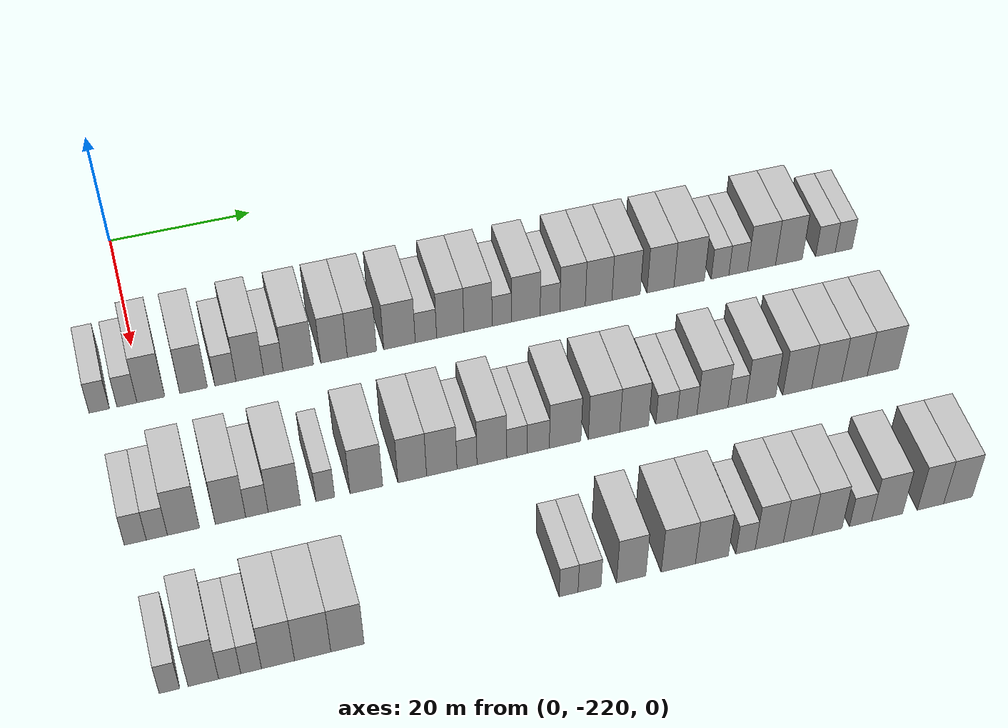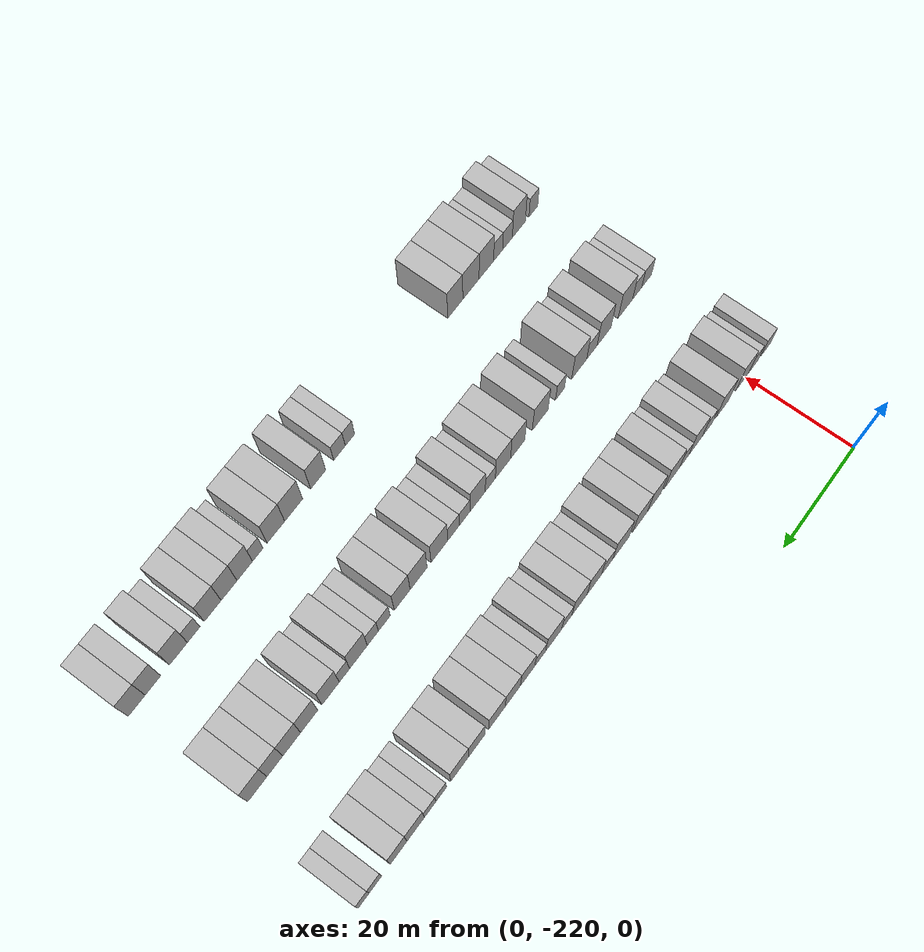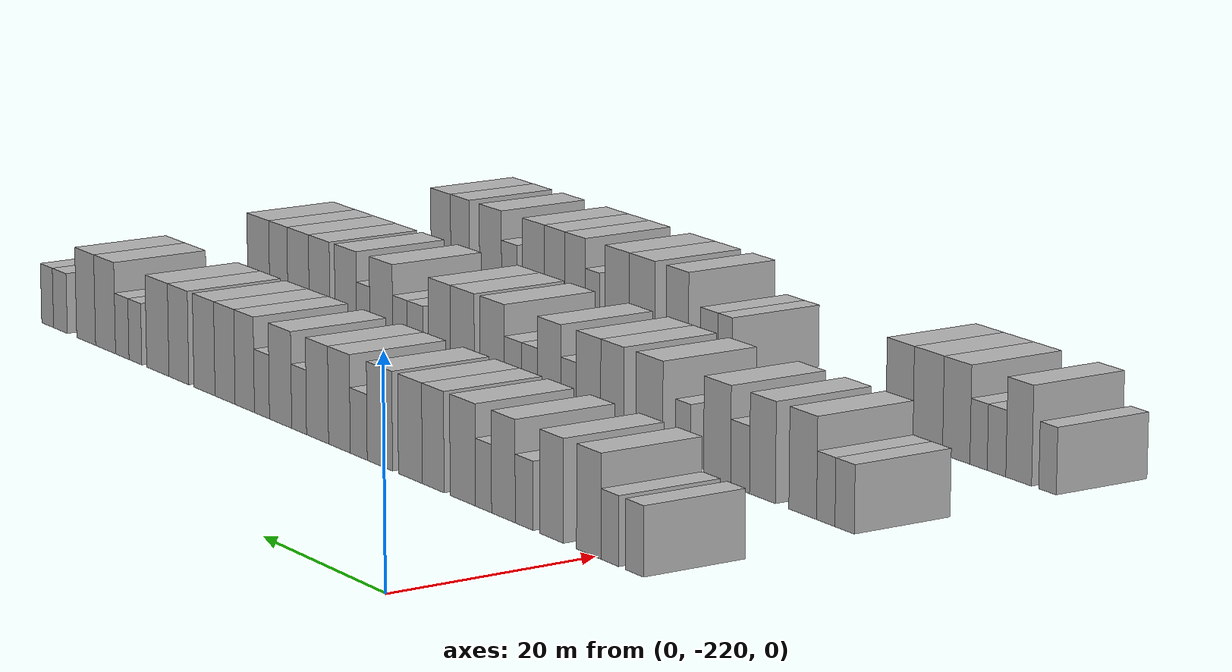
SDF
<sdf version="1.6">
 <world name="default">
  <model name="building_36">
   <static>1</static>
   <pose>25.0000 -225.7986 0 0.000000 0.000000 0.000000</pose>
   <link name="link">
    <pose>0 0 3.00 0 0 0</pose>
    <collision name="collision"><geometry><box><size>10.0000 2.6723 6.0000</size></box></geometry></collision>
    <visual name="visual">
     <cast_shadows>0</cast_shadows>
     <geometry><box><size>10.0000 2.6723 6.0000</size></box></geometry>
     <material>
      <script>
       <uri>model://HANNAS_wall/materials/scripts</uri>
       <uri>model://HANNAS_wall/materials/textures</uri>
       <name>vrc/HANNAS_wall</name>
      </script>
     </material>
    </visual>
   </link>
  </model>
  <model name="building_37">
   <static>1</static>
   <pose>25.0000 -222.1371 0 0.000000 0.000000 0.000000</pose>
   <link name="link">
    <pose>0 0 3.00 0 0 0</pose>
    <collision name="collision"><geometry><box><size>10.0000 2.6507 6.0000</size></box></geometry></collision>
    <visual name="visual">
     <cast_shadows>0</cast_shadows>
     <geometry><box><size>10.0000 2.6507 6.0000</size></box></geometry>
     <material>
      <script>
       <uri>model://HANNAS_wall/materials/scripts</uri>
       <uri>model://HANNAS_wall/materials/textures</uri>
       <name>vrc/HANNAS_wall</name>
      </script>
     </material>
    </visual>
   </link>
  </model>
  <model name="building_38">
   <static>1</static>
   <pose>25.0000 -218.9650 0 0.000000 0.000000 0.000000</pose>
   <link name="link">
    <pose>0 0 4.50 0 0 0</pose>
    <collision name="collision"><geometry><box><size>10.0000 3.6935 9.0000</size></box></geometry></collision>
    <visual name="visual">
     <cast_shadows>0</cast_shadows>
     <geometry><box><size>10.0000 3.6935 9.0000</size></box></geometry>
     <material>
      <script>
       <uri>model://HANNAS_wall/materials/scripts</uri>
       <uri>model://HANNAS_wall/materials/textures</uri>
       <name>vrc/HANNAS_wall</name>
      </script>
     </material>
    </visual>
   </link>
  </model>
  <model name="building_39">
   <static>1</static>
   <pose>25.0000 -213.2678 0 0.000000 0.000000 0.000000</pose>
   <link name="link">
    <pose>0 0 4.50 0 0 0</pose>
    <collision name="collision"><geometry><box><size>10.0000 3.7010 9.0000</size></box></geometry></collision>
    <visual name="visual">
     <cast_shadows>0</cast_shadows>
     <geometry><box><size>10.0000 3.7010 9.0000</size></box></geometry>
     <material>
      <script>
       <uri>model://HANNAS_wall/materials/scripts</uri>
       <uri>model://HANNAS_wall/materials/textures</uri>
       <name>vrc/HANNAS_wall</name>
      </script>
     </material>
    </visual>
   </link>
  </model>
  <model name="building_40">
   <static>1</static>
   <pose>25.0000 -208.9994 0 0.000000 0.000000 0.000000</pose>
   <link name="link">
    <pose>0 0 3.00 0 0 0</pose>
    <collision name="collision"><geometry><box><size>10.0000 2.8357 6.0000</size></box></geometry></collision>
    <visual name="visual">
     <cast_shadows>0</cast_shadows>
     <geometry><box><size>10.0000 2.8357 6.0000</size></box></geometry>
     <material>
      <script>
       <uri>model://HANNAS_wall/materials/scripts</uri>
       <uri>model://HANNAS_wall/materials/textures</uri>
       <name>vrc/HANNAS_wall</name>
      </script>
     </material>
    </visual>
   </link>
  </model>
  <model name="building_41">
   <static>1</static>
   <pose>25.0000 -205.6988 0 0.000000 0.000000 0.000000</pose>
   <link name="link">
    <pose>0 0 4.50 0 0 0</pose>
    <collision name="collision"><geometry><box><size>10.0000 3.7655 9.0000</size></box></geometry></collision>
    <visual name="visual">
     <cast_shadows>0</cast_shadows>
     <geometry><box><size>10.0000 3.7655 9.0000</size></box></geometry>
     <material>
      <script>
       <uri>model://HANNAS_wall/materials/scripts</uri>
       <uri>model://HANNAS_wall/materials/textures</uri>
       <name>vrc/HANNAS_wall</name>
      </script>
     </material>
    </visual>
   </link>
  </model>
  <model name="building_42">
   <static>1</static>
   <pose>25.0000 -202.5046 0 0.000000 0.000000 0.000000</pose>
   <link name="link">
    <pose>0 0 3.00 0 0 0</pose>
    <collision name="collision"><geometry><box><size>10.0000 2.6230 6.0000</size></box></geometry></collision>
    <visual name="visual">
     <cast_shadows>0</cast_shadows>
     <geometry><box><size>10.0000 2.6230 6.0000</size></box></geometry>
     <material>
      <script>
       <uri>model://HANNAS_wall/materials/scripts</uri>
       <uri>model://HANNAS_wall/materials/textures</uri>
       <name>vrc/HANNAS_wall</name>
      </script>
     </material>
    </visual>
   </link>
  </model>
  <model name="building_43">
   <static>1</static>
   <pose>25.0000 -199.1261 0 0.000000 0.000000 0.000000</pose>
   <link name="link">
    <pose>0 0 4.50 0 0 0</pose>
    <collision name="collision"><geometry><box><size>10.0000 4.1340 9.0000</size></box></geometry></collision>
    <visual name="visual">
     <cast_shadows>0</cast_shadows>
     <geometry><box><size>10.0000 4.1340 9.0000</size></box></geometry>
     <material>
      <script>
       <uri>model://HANNAS_wall/materials/scripts</uri>
       <uri>model://HANNAS_wall/materials/textures</uri>
       <name>vrc/HANNAS_wall</name>
      </script>
     </material>
    </visual>
   </link>
  </model>
  <model name="building_44">
   <static>1</static>
   <pose>25.0000 -194.2344 0 0.000000 0.000000 0.000000</pose>
   <link name="link">
    <pose>0 0 4.50 0 0 0</pose>
    <collision name="collision"><geometry><box><size>10.0000 3.6493 9.0000</size></box></geometry></collision>
    <visual name="visual">
     <cast_shadows>0</cast_shadows>
     <geometry><box><size>10.0000 3.6493 9.0000</size></box></geometry>
     <material>
      <script>
       <uri>model://HANNAS_wall/materials/scripts</uri>
       <uri>model://HANNAS_wall/materials/textures</uri>
       <name>vrc/HANNAS_wall</name>
      </script>
     </material>
    </visual>
   </link>
  </model>
  <model name="building_45">
   <static>1</static>
   <pose>25.0000 -190.3961 0 0.000000 0.000000 0.000000</pose>
   <link name="link">
    <pose>0 0 4.50 0 0 0</pose>
    <collision name="collision"><geometry><box><size>10.0000 4.0273 9.0000</size></box></geometry></collision>
    <visual name="visual">
     <cast_shadows>0</cast_shadows>
     <geometry><box><size>10.0000 4.0273 9.0000</size></box></geometry>
     <material>
      <script>
       <uri>model://HANNAS_wall/materials/scripts</uri>
       <uri>model://HANNAS_wall/materials/textures</uri>
       <name>vrc/HANNAS_wall</name>
      </script>
     </material>
    </visual>
   </link>
  </model>
  <model name="building_46">
   <static>1</static>
   <pose>25.0000 -185.1937 0 0.000000 0.000000 0.000000</pose>
   <link name="link">
    <pose>0 0 4.50 0 0 0</pose>
    <collision name="collision"><geometry><box><size>10.0000 4.3775 9.0000</size></box></geometry></collision>
    <visual name="visual">
     <cast_shadows>0</cast_shadows>
     <geometry><box><size>10.0000 4.3775 9.0000</size></box></geometry>
     <material>
      <script>
       <uri>model://HANNAS_wall/materials/scripts</uri>
       <uri>model://HANNAS_wall/materials/textures</uri>
       <name>vrc/HANNAS_wall</name>
      </script>
     </material>
    </visual>
   </link>
  </model>
  <model name="building_47">
   <static>1</static>
   <pose>25.0000 -181.5162 0 0.000000 0.000000 0.000000</pose>
   <link name="link">
    <pose>0 0 3.00 0 0 0</pose>
    <collision name="collision"><geometry><box><size>10.0000 2.9776 6.0000</size></box></geometry></collision>
    <visual name="visual">
     <cast_shadows>0</cast_shadows>
     <geometry><box><size>10.0000 2.9776 6.0000</size></box></geometry>
     <material>
      <script>
       <uri>model://HANNAS_wall/materials/scripts</uri>
       <uri>model://HANNAS_wall/materials/textures</uri>
       <name>vrc/HANNAS_wall</name>
      </script>
     </material>
    </visual>
   </link>
  </model>
  <model name="building_48">
   <static>1</static>
   <pose>25.0000 -178.1098 0 0.000000 0.000000 0.000000</pose>
   <link name="link">
    <pose>0 0 4.50 0 0 0</pose>
    <collision name="collision"><geometry><box><size>10.0000 3.8351 9.0000</size></box></geometry></collision>
    <visual name="visual">
     <cast_shadows>0</cast_shadows>
     <geometry><box><size>10.0000 3.8351 9.0000</size></box></geometry>
     <material>
      <script>
       <uri>model://HANNAS_wall/materials/scripts</uri>
       <uri>model://HANNAS_wall/materials/textures</uri>
       <name>vrc/HANNAS_wall</name>
      </script>
     </material>
    </visual>
   </link>
  </model>
  <model name="building_49">
   <static>1</static>
   <pose>25.0000 -174.2083 0 0.000000 0.000000 0.000000</pose>
   <link name="link">
    <pose>0 0 4.50 0 0 0</pose>
    <collision name="collision"><geometry><box><size>10.0000 3.9678 9.0000</size></box></geometry></collision>
    <visual name="visual">
     <cast_shadows>0</cast_shadows>
     <geometry><box><size>10.0000 3.9678 9.0000</size></box></geometry>
     <material>
      <script>
       <uri>model://HANNAS_wall/materials/scripts</uri>
       <uri>model://HANNAS_wall/materials/textures</uri>
       <name>vrc/HANNAS_wall</name>
      </script>
     </material>
    </visual>
   </link>
  </model>
  <model name="building_50">
   <static>1</static>
   <pose>25.0000 -170.8766 0 0.000000 0.000000 0.000000</pose>
   <link name="link">
    <pose>0 0 3.00 0 0 0</pose>
    <collision name="collision"><geometry><box><size>10.0000 2.6956 6.0000</size></box></geometry></collision>
    <visual name="visual">
     <cast_shadows>0</cast_shadows>
     <geometry><box><size>10.0000 2.6956 6.0000</size></box></geometry>
     <material>
      <script>
       <uri>model://HANNAS_wall/materials/scripts</uri>
       <uri>model://HANNAS_wall/materials/textures</uri>
       <name>vrc/HANNAS_wall</name>
      </script>
     </material>
    </visual>
   </link>
  </model>
  <model name="building_51">
   <static>1</static>
   <pose>25.0000 -167.4771 0 0.000000 0.000000 0.000000</pose>
   <link name="link">
    <pose>0 0 4.50 0 0 0</pose>
    <collision name="collision"><geometry><box><size>10.0000 4.1034 9.0000</size></box></geometry></collision>
    <visual name="visual">
     <cast_shadows>0</cast_shadows>
     <geometry><box><size>10.0000 4.1034 9.0000</size></box></geometry>
     <material>
      <script>
       <uri>model://HANNAS_wall/materials/scripts</uri>
       <uri>model://HANNAS_wall/materials/textures</uri>
       <name>vrc/HANNAS_wall</name>
      </script>
     </material>
    </visual>
   </link>
  </model>
  <model name="building_52">
   <static>1</static>
   <pose>25.0000 -164.0249 0 0.000000 0.000000 0.000000</pose>
   <link name="link">
    <pose>0 0 3.00 0 0 0</pose>
    <collision name="collision"><geometry><box><size>10.0000 2.8010 6.0000</size></box></geometry></collision>
    <visual name="visual">
     <cast_shadows>0</cast_shadows>
     <geometry><box><size>10.0000 2.8010 6.0000</size></box></geometry>
     <material>
      <script>
       <uri>model://HANNAS_wall/materials/scripts</uri>
       <uri>model://HANNAS_wall/materials/textures</uri>
       <name>vrc/HANNAS_wall</name>
      </script>
     </material>
    </visual>
   </link>
  </model>
  <model name="building_53">
   <static>1</static>
   <pose>25.0000 -160.7985 0 0.000000 0.000000 0.000000</pose>
   <link name="link">
    <pose>0 0 4.50 0 0 0</pose>
    <collision name="collision"><geometry><box><size>10.0000 3.6519 9.0000</size></box></geometry></collision>
    <visual name="visual">
     <cast_shadows>0</cast_shadows>
     <geometry><box><size>10.0000 3.6519 9.0000</size></box></geometry>
     <material>
      <script>
       <uri>model://HANNAS_wall/materials/scripts</uri>
       <uri>model://HANNAS_wall/materials/textures</uri>
       <name>vrc/HANNAS_wall</name>
      </script>
     </material>
    </visual>
   </link>
  </model>
  <model name="building_54">
   <static>1</static>
   <pose>25.0000 -157.0509 0 0.000000 0.000000 0.000000</pose>
   <link name="link">
    <pose>0 0 4.50 0 0 0</pose>
    <collision name="collision"><geometry><box><size>10.0000 3.8434 9.0000</size></box></geometry></collision>
    <visual name="visual">
     <cast_shadows>0</cast_shadows>
     <geometry><box><size>10.0000 3.8434 9.0000</size></box></geometry>
     <material>
      <script>
       <uri>model://HANNAS_wall/materials/scripts</uri>
       <uri>model://HANNAS_wall/materials/textures</uri>
       <name>vrc/HANNAS_wall</name>
      </script>
     </material>
    </visual>
   </link>
  </model>
  <model name="building_55">
   <static>1</static>
   <pose>25.0000 -153.0806 0 0.000000 0.000000 0.000000</pose>
   <link name="link">
    <pose>0 0 4.50 0 0 0</pose>
    <collision name="collision"><geometry><box><size>10.0000 4.0971 9.0000</size></box></geometry></collision>
    <visual name="visual">
     <cast_shadows>0</cast_shadows>
     <geometry><box><size>10.0000 4.0971 9.0000</size></box></geometry>
     <material>
      <script>
       <uri>model://HANNAS_wall/materials/scripts</uri>
       <uri>model://HANNAS_wall/materials/textures</uri>
       <name>vrc/HANNAS_wall</name>
      </script>
     </material>
    </visual>
   </link>
  </model>
  <model name="building_56">
   <static>1</static>
   <pose>25.0000 -148.0749 0 0.000000 0.000000 0.000000</pose>
   <link name="link">
    <pose>0 0 4.50 0 0 0</pose>
    <collision name="collision"><geometry><box><size>10.0000 3.9144 9.0000</size></box></geometry></collision>
    <visual name="visual">
     <cast_shadows>0</cast_shadows>
     <geometry><box><size>10.0000 3.9144 9.0000</size></box></geometry>
     <material>
      <script>
       <uri>model://HANNAS_wall/materials/scripts</uri>
       <uri>model://HANNAS_wall/materials/textures</uri>
       <name>vrc/HANNAS_wall</name>
      </script>
     </material>
    </visual>
   </link>
  </model>
  <model name="building_57">
   <static>1</static>
   <pose>25.0000 -143.8812 0 0.000000 0.000000 0.000000</pose>
   <link name="link">
    <pose>0 0 4.50 0 0 0</pose>
    <collision name="collision"><geometry><box><size>10.0000 4.4731 9.0000</size></box></geometry></collision>
    <visual name="visual">
     <cast_shadows>0</cast_shadows>
     <geometry><box><size>10.0000 4.4731 9.0000</size></box></geometry>
     <material>
      <script>
       <uri>model://HANNAS_wall/materials/scripts</uri>
       <uri>model://HANNAS_wall/materials/textures</uri>
       <name>vrc/HANNAS_wall</name>
      </script>
     </material>
    </visual>
   </link>
  </model>
  <model name="building_58">
   <static>1</static>
   <pose>25.0000 -139.3415 0 0.000000 0.000000 0.000000</pose>
   <link name="link">
    <pose>0 0 3.00 0 0 0</pose>
    <collision name="collision"><geometry><box><size>10.0000 2.6062 6.0000</size></box></geometry></collision>
    <visual name="visual">
     <cast_shadows>0</cast_shadows>
     <geometry><box><size>10.0000 2.6062 6.0000</size></box></geometry>
     <material>
      <script>
       <uri>model://HANNAS_wall/materials/scripts</uri>
       <uri>model://HANNAS_wall/materials/textures</uri>
       <name>vrc/HANNAS_wall</name>
      </script>
     </material>
    </visual>
   </link>
  </model>
  <model name="building_59">
   <static>1</static>
   <pose>25.0000 -136.6547 0 0.000000 0.000000 0.000000</pose>
   <link name="link">
    <pose>0 0 3.00 0 0 0</pose>
    <collision name="collision"><geometry><box><size>10.0000 2.7674 6.0000</size></box></geometry></collision>
    <visual name="visual">
     <cast_shadows>0</cast_shadows>
     <geometry><box><size>10.0000 2.7674 6.0000</size></box></geometry>
     <material>
      <script>
       <uri>model://HANNAS_wall/materials/scripts</uri>
       <uri>model://HANNAS_wall/materials/textures</uri>
       <name>vrc/HANNAS_wall</name>
      </script>
     </material>
    </visual>
   </link>
  </model>
  <model name="building_60">
   <static>1</static>
   <pose>25.0000 -133.1952 0 0.000000 0.000000 0.000000</pose>
   <link name="link">
    <pose>0 0 4.50 0 0 0</pose>
    <collision name="collision"><geometry><box><size>10.0000 4.1518 9.0000</size></box></geometry></collision>
    <visual name="visual">
     <cast_shadows>0</cast_shadows>
     <geometry><box><size>10.0000 4.1518 9.0000</size></box></geometry>
     <material>
      <script>
       <uri>model://HANNAS_wall/materials/scripts</uri>
       <uri>model://HANNAS_wall/materials/textures</uri>
       <name>vrc/HANNAS_wall</name>
      </script>
     </material>
    </visual>
   </link>
  </model>
  <model name="building_61">
   <static>1</static>
   <pose>25.0000 -129.1268 0 0.000000 0.000000 0.000000</pose>
   <link name="link">
    <pose>0 0 4.50 0 0 0</pose>
    <collision name="collision"><geometry><box><size>10.0000 3.9849 9.0000</size></box></geometry></collision>
    <visual name="visual">
     <cast_shadows>0</cast_shadows>
     <geometry><box><size>10.0000 3.9849 9.0000</size></box></geometry>
     <material>
      <script>
       <uri>model://HANNAS_wall/materials/scripts</uri>
       <uri>model://HANNAS_wall/materials/textures</uri>
       <name>vrc/HANNAS_wall</name>
      </script>
     </material>
    </visual>
   </link>
  </model>
  <model name="building_62">
   <static>1</static>
   <pose>25.0000 -123.6595 0 0.000000 0.000000 0.000000</pose>
   <link name="link">
    <pose>0 0 3.00 0 0 0</pose>
    <collision name="collision"><geometry><box><size>10.0000 2.9499 6.0000</size></box></geometry></collision>
    <visual name="visual">
     <cast_shadows>0</cast_shadows>
     <geometry><box><size>10.0000 2.9499 6.0000</size></box></geometry>
     <material>
      <script>
       <uri>model://HANNAS_wall/materials/scripts</uri>
       <uri>model://HANNAS_wall/materials/textures</uri>
       <name>vrc/HANNAS_wall</name>
      </script>
     </material>
    </visual>
   </link>
  </model>
  <model name="building_63">
   <static>1</static>
   <pose>25.0000 -120.8987 0 0.000000 0.000000 0.000000</pose>
   <link name="link">
    <pose>0 0 3.00 0 0 0</pose>
    <collision name="collision"><geometry><box><size>10.0000 2.5716 6.0000</size></box></geometry></collision>
    <visual name="visual">
     <cast_shadows>0</cast_shadows>
     <geometry><box><size>10.0000 2.5716 6.0000</size></box></geometry>
     <material>
      <script>
       <uri>model://HANNAS_wall/materials/scripts</uri>
       <uri>model://HANNAS_wall/materials/textures</uri>
       <name>vrc/HANNAS_wall</name>
      </script>
     </material>
    </visual>
   </link>
  </model>
  <model name="building_240">
   <static>1</static>
   <pose>47.0000 -224.4428 0 0.000000 0.000000 0.000000</pose>
   <link name="link">
    <pose>0 0 3.00 0 0 0</pose>
    <collision name="collision"><geometry><box><size>10.0000 2.7559 6.0000</size></box></geometry></collision>
    <visual name="visual">
     <cast_shadows>0</cast_shadows>
     <geometry><box><size>10.0000 2.7559 6.0000</size></box></geometry>
     <material>
      <script>
       <uri>model://HANNAS_wall/materials/scripts</uri>
       <uri>model://HANNAS_wall/materials/textures</uri>
       <name>vrc/HANNAS_wall</name>
      </script>
     </material>
    </visual>
   </link>
  </model>
  <model name="building_241">
   <static>1</static>
   <pose>47.0000 -221.7341 0 0.000000 0.000000 0.000000</pose>
   <link name="link">
    <pose>0 0 3.00 0 0 0</pose>
    <collision name="collision"><geometry><box><size>10.0000 2.6615 6.0000</size></box></geometry></collision>
    <visual name="visual">
     <cast_shadows>0</cast_shadows>
     <geometry><box><size>10.0000 2.6615 6.0000</size></box></geometry>
     <material>
      <script>
       <uri>model://HANNAS_wall/materials/scripts</uri>
       <uri>model://HANNAS_wall/materials/textures</uri>
       <name>vrc/HANNAS_wall</name>
      </script>
     </material>
    </visual>
   </link>
  </model>
  <model name="building_242">
   <static>1</static>
   <pose>47.0000 -218.3770 0 0.000000 0.000000 0.000000</pose>
   <link name="link">
    <pose>0 0 4.50 0 0 0</pose>
    <collision name="collision"><geometry><box><size>10.0000 4.0526 9.0000</size></box></geometry></collision>
    <visual name="visual">
     <cast_shadows>0</cast_shadows>
     <geometry><box><size>10.0000 4.0526 9.0000</size></box></geometry>
     <material>
      <script>
       <uri>model://HANNAS_wall/materials/scripts</uri>
       <uri>model://HANNAS_wall/materials/textures</uri>
       <name>vrc/HANNAS_wall</name>
      </script>
     </material>
    </visual>
   </link>
  </model>
  <model name="building_243">
   <static>1</static>
   <pose>47.0000 -212.4149 0 0.000000 0.000000 0.000000</pose>
   <link name="link">
    <pose>0 0 4.50 0 0 0</pose>
    <collision name="collision"><geometry><box><size>10.0000 3.8716 9.0000</size></box></geometry></collision>
    <visual name="visual">
     <cast_shadows>0</cast_shadows>
     <geometry><box><size>10.0000 3.8716 9.0000</size></box></geometry>
     <material>
      <script>
       <uri>model://HANNAS_wall/materials/scripts</uri>
       <uri>model://HANNAS_wall/materials/textures</uri>
       <name>vrc/HANNAS_wall</name>
      </script>
     </material>
    </visual>
   </link>
  </model>
  <model name="building_244">
   <static>1</static>
   <pose>47.0000 -209.0388 0 0.000000 0.000000 0.000000</pose>
   <link name="link">
    <pose>0 0 3.00 0 0 0</pose>
    <collision name="collision"><geometry><box><size>10.0000 2.8806 6.0000</size></box></geometry></collision>
    <visual name="visual">
     <cast_shadows>0</cast_shadows>
     <geometry><box><size>10.0000 2.8806 6.0000</size></box></geometry>
     <material>
      <script>
       <uri>model://HANNAS_wall/materials/scripts</uri>
       <uri>model://HANNAS_wall/materials/textures</uri>
       <name>vrc/HANNAS_wall</name>
      </script>
     </material>
    </visual>
   </link>
  </model>
  <model name="building_245">
   <static>1</static>
   <pose>47.0000 -205.5225 0 0.000000 0.000000 0.000000</pose>
   <link name="link">
    <pose>0 0 4.50 0 0 0</pose>
    <collision name="collision"><geometry><box><size>10.0000 4.1521 9.0000</size></box></geometry></collision>
    <visual name="visual">
     <cast_shadows>0</cast_shadows>
     <geometry><box><size>10.0000 4.1521 9.0000</size></box></geometry>
     <material>
      <script>
       <uri>model://HANNAS_wall/materials/scripts</uri>
       <uri>model://HANNAS_wall/materials/textures</uri>
       <name>vrc/HANNAS_wall</name>
      </script>
     </material>
    </visual>
   </link>
  </model>
  <model name="building_246">
   <static>1</static>
   <pose>47.0000 -200.2372 0 0.000000 0.000000 0.000000</pose>
   <link name="link">
    <pose>0 0 3.00 0 0 0</pose>
    <collision name="collision"><geometry><box><size>10.0000 2.4184 6.0000</size></box></geometry></collision>
    <visual name="visual">
     <cast_shadows>0</cast_shadows>
     <geometry><box><size>10.0000 2.4184 6.0000</size></box></geometry>
     <material>
      <script>
       <uri>model://HANNAS_wall/materials/scripts</uri>
       <uri>model://HANNAS_wall/materials/textures</uri>
       <name>vrc/HANNAS_wall</name>
      </script>
     </material>
    </visual>
   </link>
  </model>
  <model name="building_247">
   <static>1</static>
   <pose>47.0000 -194.9005 0 0.000000 0.000000 0.000000</pose>
   <link name="link">
    <pose>0 0 4.50 0 0 0</pose>
    <collision name="collision"><geometry><box><size>10.0000 4.2551 9.0000</size></box></geometry></collision>
    <visual name="visual">
     <cast_shadows>0</cast_shadows>
     <geometry><box><size>10.0000 4.2551 9.0000</size></box></geometry>
     <material>
      <script>
       <uri>model://HANNAS_wall/materials/scripts</uri>
       <uri>model://HANNAS_wall/materials/textures</uri>
       <name>vrc/HANNAS_wall</name>
      </script>
     </material>
    </visual>
   </link>
  </model>
  <model name="building_248">
   <static>1</static>
   <pose>47.0000 -188.8875 0 0.000000 0.000000 0.000000</pose>
   <link name="link">
    <pose>0 0 4.50 0 0 0</pose>
    <collision name="collision"><geometry><box><size>10.0000 3.7710 9.0000</size></box></geometry></collision>
    <visual name="visual">
     <cast_shadows>0</cast_shadows>
     <geometry><box><size>10.0000 3.7710 9.0000</size></box></geometry>
     <material>
      <script>
       <uri>model://HANNAS_wall/materials/scripts</uri>
       <uri>model://HANNAS_wall/materials/textures</uri>
       <name>vrc/HANNAS_wall</name>
      </script>
     </material>
    </visual>
   </link>
  </model>
  <model name="building_249">
   <static>1</static>
   <pose>47.0000 -184.9886 0 0.000000 0.000000 0.000000</pose>
   <link name="link">
    <pose>0 0 4.50 0 0 0</pose>
    <collision name="collision"><geometry><box><size>10.0000 4.0267 9.0000</size></box></geometry></collision>
    <visual name="visual">
     <cast_shadows>0</cast_shadows>
     <geometry><box><size>10.0000 4.0267 9.0000</size></box></geometry>
     <material>
      <script>
       <uri>model://HANNAS_wall/materials/scripts</uri>
       <uri>model://HANNAS_wall/materials/textures</uri>
       <name>vrc/HANNAS_wall</name>
      </script>
     </material>
    </visual>
   </link>
  </model>
  <model name="building_250">
   <static>1</static>
   <pose>47.0000 -181.6475 0 0.000000 0.000000 0.000000</pose>
   <link name="link">
    <pose>0 0 3.00 0 0 0</pose>
    <collision name="collision"><geometry><box><size>10.0000 2.6555 6.0000</size></box></geometry></collision>
    <visual name="visual">
     <cast_shadows>0</cast_shadows>
     <geometry><box><size>10.0000 2.6555 6.0000</size></box></geometry>
     <material>
      <script>
       <uri>model://HANNAS_wall/materials/scripts</uri>
       <uri>model://HANNAS_wall/materials/textures</uri>
       <name>vrc/HANNAS_wall</name>
      </script>
     </material>
    </visual>
   </link>
  </model>
  <model name="building_251">
   <static>1</static>
   <pose>47.0000 -178.3277 0 0.000000 0.000000 0.000000</pose>
   <link name="link">
    <pose>0 0 4.50 0 0 0</pose>
    <collision name="collision"><geometry><box><size>10.0000 3.9840 9.0000</size></box></geometry></collision>
    <visual name="visual">
     <cast_shadows>0</cast_shadows>
     <geometry><box><size>10.0000 3.9840 9.0000</size></box></geometry>
     <material>
      <script>
       <uri>model://HANNAS_wall/materials/scripts</uri>
       <uri>model://HANNAS_wall/materials/textures</uri>
       <name>vrc/HANNAS_wall</name>
      </script>
     </material>
    </visual>
   </link>
  </model>
  <model name="building_252">
   <static>1</static>
   <pose>47.0000 -174.9699 0 0.000000 0.000000 0.000000</pose>
   <link name="link">
    <pose>0 0 3.00 0 0 0</pose>
    <collision name="collision"><geometry><box><size>10.0000 2.7317 6.0000</size></box></geometry></collision>
    <visual name="visual">
     <cast_shadows>0</cast_shadows>
     <geometry><box><size>10.0000 2.7317 6.0000</size></box></geometry>
     <material>
      <script>
       <uri>model://HANNAS_wall/materials/scripts</uri>
       <uri>model://HANNAS_wall/materials/textures</uri>
       <name>vrc/HANNAS_wall</name>
      </script>
     </material>
    </visual>
   </link>
  </model>
  <model name="building_253">
   <static>1</static>
   <pose>47.0000 -172.1159 0 0.000000 0.000000 0.000000</pose>
   <link name="link">
    <pose>0 0 3.00 0 0 0</pose>
    <collision name="collision"><geometry><box><size>10.0000 2.9762 6.0000</size></box></geometry></collision>
    <visual name="visual">
     <cast_shadows>0</cast_shadows>
     <geometry><box><size>10.0000 2.9762 6.0000</size></box></geometry>
     <material>
      <script>
       <uri>model://HANNAS_wall/materials/scripts</uri>
       <uri>model://HANNAS_wall/materials/textures</uri>
       <name>vrc/HANNAS_wall</name>
      </script>
     </material>
    </visual>
   </link>
  </model>
  <model name="building_254">
   <static>1</static>
   <pose>47.0000 -168.4915 0 0.000000 0.000000 0.000000</pose>
   <link name="link">
    <pose>0 0 4.50 0 0 0</pose>
    <collision name="collision"><geometry><box><size>10.0000 4.2726 9.0000</size></box></geometry></collision>
    <visual name="visual">
     <cast_shadows>0</cast_shadows>
     <geometry><box><size>10.0000 4.2726 9.0000</size></box></geometry>
     <material>
      <script>
       <uri>model://HANNAS_wall/materials/scripts</uri>
       <uri>model://HANNAS_wall/materials/textures</uri>
       <name>vrc/HANNAS_wall</name>
      </script>
     </material>
    </visual>
   </link>
  </model>
  <model name="building_255">
   <static>1</static>
   <pose>47.0000 -163.2133 0 0.000000 0.000000 0.000000</pose>
   <link name="link">
    <pose>0 0 4.50 0 0 0</pose>
    <collision name="collision"><geometry><box><size>10.0000 4.2838 9.0000</size></box></geometry></collision>
    <visual name="visual">
     <cast_shadows>0</cast_shadows>
     <geometry><box><size>10.0000 4.2838 9.0000</size></box></geometry>
     <material>
      <script>
       <uri>model://HANNAS_wall/materials/scripts</uri>
       <uri>model://HANNAS_wall/materials/textures</uri>
       <name>vrc/HANNAS_wall</name>
      </script>
     </material>
    </visual>
   </link>
  </model>
  <model name="building_256">
   <static>1</static>
   <pose>47.0000 -159.0936 0 0.000000 0.000000 0.000000</pose>
   <link name="link">
    <pose>0 0 4.50 0 0 0</pose>
    <collision name="collision"><geometry><box><size>10.0000 3.9556 9.0000</size></box></geometry></collision>
    <visual name="visual">
     <cast_shadows>0</cast_shadows>
     <geometry><box><size>10.0000 3.9556 9.0000</size></box></geometry>
     <material>
      <script>
       <uri>model://HANNAS_wall/materials/scripts</uri>
       <uri>model://HANNAS_wall/materials/textures</uri>
       <name>vrc/HANNAS_wall</name>
      </script>
     </material>
    </visual>
   </link>
  </model>
  <model name="building_257">
   <static>1</static>
   <pose>47.0000 -154.6467 0 0.000000 0.000000 0.000000</pose>
   <link name="link">
    <pose>0 0 3.00 0 0 0</pose>
    <collision name="collision"><geometry><box><size>10.0000 2.9383 6.0000</size></box></geometry></collision>
    <visual name="visual">
     <cast_shadows>0</cast_shadows>
     <geometry><box><size>10.0000 2.9383 6.0000</size></box></geometry>
     <material>
      <script>
       <uri>model://HANNAS_wall/materials/scripts</uri>
       <uri>model://HANNAS_wall/materials/textures</uri>
       <name>vrc/HANNAS_wall</name>
      </script>
     </material>
    </visual>
   </link>
  </model>
  <model name="building_258">
   <static>1</static>
   <pose>47.0000 -151.8030 0 0.000000 0.000000 0.000000</pose>
   <link name="link">
    <pose>0 0 3.00 0 0 0</pose>
    <collision name="collision"><geometry><box><size>10.0000 2.7490 6.0000</size></box></geometry></collision>
    <visual name="visual">
     <cast_shadows>0</cast_shadows>
     <geometry><box><size>10.0000 2.7490 6.0000</size></box></geometry>
     <material>
      <script>
       <uri>model://HANNAS_wall/materials/scripts</uri>
       <uri>model://HANNAS_wall/materials/textures</uri>
       <name>vrc/HANNAS_wall</name>
      </script>
     </material>
    </visual>
   </link>
  </model>
  <model name="building_259">
   <static>1</static>
   <pose>47.0000 -148.2724 0 0.000000 0.000000 0.000000</pose>
   <link name="link">
    <pose>0 0 4.50 0 0 0</pose>
    <collision name="collision"><geometry><box><size>10.0000 4.3121 9.0000</size></box></geometry></collision>
    <visual name="visual">
     <cast_shadows>0</cast_shadows>
     <geometry><box><size>10.0000 4.3121 9.0000</size></box></geometry>
     <material>
      <script>
       <uri>model://HANNAS_wall/materials/scripts</uri>
       <uri>model://HANNAS_wall/materials/textures</uri>
       <name>vrc/HANNAS_wall</name>
      </script>
     </material>
    </visual>
   </link>
  </model>
  <model name="building_260">
   <static>1</static>
   <pose>47.0000 -144.8488 0 0.000000 0.000000 0.000000</pose>
   <link name="link">
    <pose>0 0 3.00 0 0 0</pose>
    <collision name="collision"><geometry><box><size>10.0000 2.5350 6.0000</size></box></geometry></collision>
    <visual name="visual">
     <cast_shadows>0</cast_shadows>
     <geometry><box><size>10.0000 2.5350 6.0000</size></box></geometry>
     <material>
      <script>
       <uri>model://HANNAS_wall/materials/scripts</uri>
       <uri>model://HANNAS_wall/materials/textures</uri>
       <name>vrc/HANNAS_wall</name>
      </script>
     </material>
    </visual>
   </link>
  </model>
  <model name="building_261">
   <static>1</static>
   <pose>47.0000 -141.4989 0 0.000000 0.000000 0.000000</pose>
   <link name="link">
    <pose>0 0 4.50 0 0 0</pose>
    <collision name="collision"><geometry><box><size>10.0000 4.1649 9.0000</size></box></geometry></collision>
    <visual name="visual">
     <cast_shadows>0</cast_shadows>
     <geometry><box><size>10.0000 4.1649 9.0000</size></box></geometry>
     <material>
      <script>
       <uri>model://HANNAS_wall/materials/scripts</uri>
       <uri>model://HANNAS_wall/materials/textures</uri>
       <name>vrc/HANNAS_wall</name>
      </script>
     </material>
    </visual>
   </link>
  </model>
  <model name="building_262">
   <static>1</static>
   <pose>47.0000 -136.3762 0 0.000000 0.000000 0.000000</pose>
   <link name="link">
    <pose>0 0 4.50 0 0 0</pose>
    <collision name="collision"><geometry><box><size>10.0000 4.0804 9.0000</size></box></geometry></collision>
    <visual name="visual">
     <cast_shadows>0</cast_shadows>
     <geometry><box><size>10.0000 4.0804 9.0000</size></box></geometry>
     <material>
      <script>
       <uri>model://HANNAS_wall/materials/scripts</uri>
       <uri>model://HANNAS_wall/materials/textures</uri>
       <name>vrc/HANNAS_wall</name>
      </script>
     </material>
    </visual>
   </link>
  </model>
  <model name="building_263">
   <static>1</static>
   <pose>47.0000 -132.2044 0 0.000000 0.000000 0.000000</pose>
   <link name="link">
    <pose>0 0 4.50 0 0 0</pose>
    <collision name="collision"><geometry><box><size>10.0000 4.2632 9.0000</size></box></geometry></collision>
    <visual name="visual">
     <cast_shadows>0</cast_shadows>
     <geometry><box><size>10.0000 4.2632 9.0000</size></box></geometry>
     <material>
      <script>
       <uri>model://HANNAS_wall/materials/scripts</uri>
       <uri>model://HANNAS_wall/materials/textures</uri>
       <name>vrc/HANNAS_wall</name>
      </script>
     </material>
    </visual>
   </link>
  </model>
  <model name="building_264">
   <static>1</static>
   <pose>47.0000 -128.2385 0 0.000000 0.000000 0.000000</pose>
   <link name="link">
    <pose>0 0 4.50 0 0 0</pose>
    <collision name="collision"><geometry><box><size>10.0000 3.6686 9.0000</size></box></geometry></collision>
    <visual name="visual">
     <cast_shadows>0</cast_shadows>
     <geometry><box><size>10.0000 3.6686 9.0000</size></box></geometry>
     <material>
      <script>
       <uri>model://HANNAS_wall/materials/scripts</uri>
       <uri>model://HANNAS_wall/materials/textures</uri>
       <name>vrc/HANNAS_wall</name>
      </script>
     </material>
    </visual>
   </link>
  </model>
  <model name="building_265">
   <static>1</static>
   <pose>47.0000 -124.1696 0 0.000000 0.000000 0.000000</pose>
   <link name="link">
    <pose>0 0 4.50 0 0 0</pose>
    <collision name="collision"><geometry><box><size>10.0000 4.4692 9.0000</size></box></geometry></collision>
    <visual name="visual">
     <cast_shadows>0</cast_shadows>
     <geometry><box><size>10.0000 4.4692 9.0000</size></box></geometry>
     <material>
      <script>
       <uri>model://HANNAS_wall/materials/scripts</uri>
       <uri>model://HANNAS_wall/materials/textures</uri>
       <name>vrc/HANNAS_wall</name>
      </script>
     </material>
    </visual>
   </link>
  </model>
  <model name="building_438">
   <static>1</static>
   <pose>69.0000 -223.8082 0 0.000000 0.000000 0.000000</pose>
   <link name="link">
    <pose>0 0 3.00 0 0 0</pose>
    <collision name="collision"><geometry><box><size>10.0000 2.4449 6.0000</size></box></geometry></collision>
    <visual name="visual">
     <cast_shadows>0</cast_shadows>
     <geometry><box><size>10.0000 2.4449 6.0000</size></box></geometry>
     <material>
      <script>
       <uri>model://HANNAS_wall/materials/scripts</uri>
       <uri>model://HANNAS_wall/materials/textures</uri>
       <name>vrc/HANNAS_wall</name>
      </script>
     </material>
    </visual>
   </link>
  </model>
  <model name="building_439">
   <static>1</static>
   <pose>69.0000 -219.7659 0 0.000000 0.000000 0.000000</pose>
   <link name="link">
    <pose>0 0 4.50 0 0 0</pose>
    <collision name="collision"><geometry><box><size>10.0000 3.6399 9.0000</size></box></geometry></collision>
    <visual name="visual">
     <cast_shadows>0</cast_shadows>
     <geometry><box><size>10.0000 3.6399 9.0000</size></box></geometry>
     <material>
      <script>
       <uri>model://HANNAS_wall/materials/scripts</uri>
       <uri>model://HANNAS_wall/materials/textures</uri>
       <name>vrc/HANNAS_wall</name>
      </script>
     </material>
    </visual>
   </link>
  </model>
  <model name="building_440">
   <static>1</static>
   <pose>69.0000 -216.6131 0 0.000000 0.000000 0.000000</pose>
   <link name="link">
    <pose>0 0 3.00 0 0 0</pose>
    <collision name="collision"><geometry><box><size>10.0000 2.6655 6.0000</size></box></geometry></collision>
    <visual name="visual">
     <cast_shadows>0</cast_shadows>
     <geometry><box><size>10.0000 2.6655 6.0000</size></box></geometry>
     <material>
      <script>
       <uri>model://HANNAS_wall/materials/scripts</uri>
       <uri>model://HANNAS_wall/materials/textures</uri>
       <name>vrc/HANNAS_wall</name>
      </script>
     </material>
    </visual>
   </link>
  </model>
  <model name="building_441">
   <static>1</static>
   <pose>69.0000 -214.0324 0 0.000000 0.000000 0.000000</pose>
   <link name="link">
    <pose>0 0 3.00 0 0 0</pose>
    <collision name="collision"><geometry><box><size>10.0000 2.4960 6.0000</size></box></geometry></collision>
    <visual name="visual">
     <cast_shadows>0</cast_shadows>
     <geometry><box><size>10.0000 2.4960 6.0000</size></box></geometry>
     <material>
      <script>
       <uri>model://HANNAS_wall/materials/scripts</uri>
       <uri>model://HANNAS_wall/materials/textures</uri>
       <name>vrc/HANNAS_wall</name>
      </script>
     </material>
    </visual>
   </link>
  </model>
  <model name="building_442">
   <static>1</static>
   <pose>69.0000 -210.7832 0 0.000000 0.000000 0.000000</pose>
   <link name="link">
    <pose>0 0 4.50 0 0 0</pose>
    <collision name="collision"><geometry><box><size>10.0000 4.0023 9.0000</size></box></geometry></collision>
    <visual name="visual">
     <cast_shadows>0</cast_shadows>
     <geometry><box><size>10.0000 4.0023 9.0000</size></box></geometry>
     <material>
      <script>
       <uri>model://HANNAS_wall/materials/scripts</uri>
       <uri>model://HANNAS_wall/materials/textures</uri>
       <name>vrc/HANNAS_wall</name>
      </script>
     </material>
    </visual>
   </link>
  </model>
  <model name="building_443">
   <static>1</static>
   <pose>69.0000 -206.5768 0 0.000000 0.000000 0.000000</pose>
   <link name="link">
    <pose>0 0 4.50 0 0 0</pose>
    <collision name="collision"><geometry><box><size>10.0000 4.4105 9.0000</size></box></geometry></collision>
    <visual name="visual">
     <cast_shadows>0</cast_shadows>
     <geometry><box><size>10.0000 4.4105 9.0000</size></box></geometry>
     <material>
      <script>
       <uri>model://HANNAS_wall/materials/scripts</uri>
       <uri>model://HANNAS_wall/materials/textures</uri>
       <name>vrc/HANNAS_wall</name>
      </script>
     </material>
    </visual>
   </link>
  </model>
  <model name="building_444">
   <static>1</static>
   <pose>69.0000 -202.3310 0 0.000000 0.000000 0.000000</pose>
   <link name="link">
    <pose>0 0 4.50 0 0 0</pose>
    <collision name="collision"><geometry><box><size>10.0000 4.0811 9.0000</size></box></geometry></collision>
    <visual name="visual">
     <cast_shadows>0</cast_shadows>
     <geometry><box><size>10.0000 4.0811 9.0000</size></box></geometry>
     <material>
      <script>
       <uri>model://HANNAS_wall/materials/scripts</uri>
       <uri>model://HANNAS_wall/materials/textures</uri>
       <name>vrc/HANNAS_wall</name>
      </script>
     </material>
    </visual>
   </link>
  </model>
  <model name="building_445">
   <static>1</static>
   <pose>69.0000 -174.6828 0 0.000000 0.000000 0.000000</pose>
   <link name="link">
    <pose>0 0 3.00 0 0 0</pose>
    <collision name="collision"><geometry><box><size>10.0000 2.4051 6.0000</size></box></geometry></collision>
    <visual name="visual">
     <cast_shadows>0</cast_shadows>
     <geometry><box><size>10.0000 2.4051 6.0000</size></box></geometry>
     <material>
      <script>
       <uri>model://HANNAS_wall/materials/scripts</uri>
       <uri>model://HANNAS_wall/materials/textures</uri>
       <name>vrc/HANNAS_wall</name>
      </script>
     </material>
    </visual>
   </link>
  </model>
  <model name="building_446">
   <static>1</static>
   <pose>69.0000 -172.0124 0 0.000000 0.000000 0.000000</pose>
   <link name="link">
    <pose>0 0 3.00 0 0 0</pose>
    <collision name="collision"><geometry><box><size>10.0000 2.9358 6.0000</size></box></geometry></collision>
    <visual name="visual">
     <cast_shadows>0</cast_shadows>
     <geometry><box><size>10.0000 2.9358 6.0000</size></box></geometry>
     <material>
      <script>
       <uri>model://HANNAS_wall/materials/scripts</uri>
       <uri>model://HANNAS_wall/materials/textures</uri>
       <name>vrc/HANNAS_wall</name>
      </script>
     </material>
    </visual>
   </link>
  </model>
  <model name="building_447">
   <static>1</static>
   <pose>69.0000 -166.6552 0 0.000000 0.000000 0.000000</pose>
   <link name="link">
    <pose>0 0 4.50 0 0 0</pose>
    <collision name="collision"><geometry><box><size>10.0000 3.7786 9.0000</size></box></geometry></collision>
    <visual name="visual">
     <cast_shadows>0</cast_shadows>
     <geometry><box><size>10.0000 3.7786 9.0000</size></box></geometry>
     <material>
      <script>
       <uri>model://HANNAS_wall/materials/scripts</uri>
       <uri>model://HANNAS_wall/materials/textures</uri>
       <name>vrc/HANNAS_wall</name>
      </script>
     </material>
    </visual>
   </link>
  </model>
  <model name="building_448">
   <static>1</static>
   <pose>69.0000 -160.5379 0 0.000000 0.000000 0.000000</pose>
   <link name="link">
    <pose>0 0 4.50 0 0 0</pose>
    <collision name="collision"><geometry><box><size>10.0000 4.4560 9.0000</size></box></geometry></collision>
    <visual name="visual">
     <cast_shadows>0</cast_shadows>
     <geometry><box><size>10.0000 4.4560 9.0000</size></box></geometry>
     <material>
      <script>
       <uri>model://HANNAS_wall/materials/scripts</uri>
       <uri>model://HANNAS_wall/materials/textures</uri>
       <name>vrc/HANNAS_wall</name>
      </script>
     </material>
    </visual>
   </link>
  </model>
  <model name="building_449">
   <static>1</static>
   <pose>69.0000 -156.1579 0 0.000000 0.000000 0.000000</pose>
   <link name="link">
    <pose>0 0 4.50 0 0 0</pose>
    <collision name="collision"><geometry><box><size>10.0000 4.3041 9.0000</size></box></geometry></collision>
    <visual name="visual">
     <cast_shadows>0</cast_shadows>
     <geometry><box><size>10.0000 4.3041 9.0000</size></box></geometry>
     <material>
      <script>
       <uri>model://HANNAS_wall/materials/scripts</uri>
       <uri>model://HANNAS_wall/materials/textures</uri>
       <name>vrc/HANNAS_wall</name>
      </script>
     </material>
    </visual>
   </link>
  </model>
  <model name="building_450">
   <static>1</static>
   <pose>69.0000 -151.7298 0 0.000000 0.000000 0.000000</pose>
   <link name="link">
    <pose>0 0 3.00 0 0 0</pose>
    <collision name="collision"><geometry><box><size>10.0000 2.5520 6.0000</size></box></geometry></collision>
    <visual name="visual">
     <cast_shadows>0</cast_shadows>
     <geometry><box><size>10.0000 2.5520 6.0000</size></box></geometry>
     <material>
      <script>
       <uri>model://HANNAS_wall/materials/scripts</uri>
       <uri>model://HANNAS_wall/materials/textures</uri>
       <name>vrc/HANNAS_wall</name>
      </script>
     </material>
    </visual>
   </link>
  </model>
  <model name="building_451">
   <static>1</static>
   <pose>69.0000 -148.5843 0 0.000000 0.000000 0.000000</pose>
   <link name="link">
    <pose>0 0 4.50 0 0 0</pose>
    <collision name="collision"><geometry><box><size>10.0000 3.7392 9.0000</size></box></geometry></collision>
    <visual name="visual">
     <cast_shadows>0</cast_shadows>
     <geometry><box><size>10.0000 3.7392 9.0000</size></box></geometry>
     <material>
      <script>
       <uri>model://HANNAS_wall/materials/scripts</uri>
       <uri>model://HANNAS_wall/materials/textures</uri>
       <name>vrc/HANNAS_wall</name>
      </script>
     </material>
    </visual>
   </link>
  </model>
  <model name="building_452">
   <static>1</static>
   <pose>69.0000 -144.8084 0 0.000000 0.000000 0.000000</pose>
   <link name="link">
    <pose>0 0 4.50 0 0 0</pose>
    <collision name="collision"><geometry><box><size>10.0000 3.8125 9.0000</size></box></geometry></collision>
    <visual name="visual">
     <cast_shadows>0</cast_shadows>
     <geometry><box><size>10.0000 3.8125 9.0000</size></box></geometry>
     <material>
      <script>
       <uri>model://HANNAS_wall/materials/scripts</uri>
       <uri>model://HANNAS_wall/materials/textures</uri>
       <name>vrc/HANNAS_wall</name>
      </script>
     </material>
    </visual>
   </link>
  </model>
  <model name="building_453">
   <static>1</static>
   <pose>69.0000 -140.8894 0 0.000000 0.000000 0.000000</pose>
   <link name="link">
    <pose>0 0 4.50 0 0 0</pose>
    <collision name="collision"><geometry><box><size>10.0000 4.0256 9.0000</size></box></geometry></collision>
    <visual name="visual">
     <cast_shadows>0</cast_shadows>
     <geometry><box><size>10.0000 4.0256 9.0000</size></box></geometry>
     <material>
      <script>
       <uri>model://HANNAS_wall/materials/scripts</uri>
       <uri>model://HANNAS_wall/materials/textures</uri>
       <name>vrc/HANNAS_wall</name>
      </script>
     </material>
    </visual>
   </link>
  </model>
  <model name="building_454">
   <static>1</static>
   <pose>69.0000 -136.3898 0 0.000000 0.000000 0.000000</pose>
   <link name="link">
    <pose>0 0 3.00 0 0 0</pose>
    <collision name="collision"><geometry><box><size>10.0000 2.9734 6.0000</size></box></geometry></collision>
    <visual name="visual">
     <cast_shadows>0</cast_shadows>
     <geometry><box><size>10.0000 2.9734 6.0000</size></box></geometry>
     <material>
      <script>
       <uri>model://HANNAS_wall/materials/scripts</uri>
       <uri>model://HANNAS_wall/materials/textures</uri>
       <name>vrc/HANNAS_wall</name>
      </script>
     </material>
    </visual>
   </link>
  </model>
  <model name="building_455">
   <static>1</static>
   <pose>69.0000 -132.7961 0 0.000000 0.000000 0.000000</pose>
   <link name="link">
    <pose>0 0 4.50 0 0 0</pose>
    <collision name="collision"><geometry><box><size>10.0000 4.2141 9.0000</size></box></geometry></collision>
    <visual name="visual">
     <cast_shadows>0</cast_shadows>
     <geometry><box><size>10.0000 4.2141 9.0000</size></box></geometry>
     <material>
      <script>
       <uri>model://HANNAS_wall/materials/scripts</uri>
       <uri>model://HANNAS_wall/materials/textures</uri>
       <name>vrc/HANNAS_wall</name>
      </script>
     </material>
    </visual>
   </link>
  </model>
  <model name="building_456">
   <static>1</static>
   <pose>69.0000 -126.8863 0 0.000000 0.000000 0.000000</pose>
   <link name="link">
    <pose>0 0 4.50 0 0 0</pose>
    <collision name="collision"><geometry><box><size>10.0000 3.6053 9.0000</size></box></geometry></collision>
    <visual name="visual">
     <cast_shadows>0</cast_shadows>
     <geometry><box><size>10.0000 3.6053 9.0000</size></box></geometry>
     <material>
      <script>
       <uri>model://HANNAS_wall/materials/scripts</uri>
       <uri>model://HANNAS_wall/materials/textures</uri>
       <name>vrc/HANNAS_wall</name>
      </script>
     </material>
    </visual>
   </link>
  </model>
  <model name="building_457">
   <static>1</static>
   <pose>69.0000 -123.1308 0 0.000000 0.000000 0.000000</pose>
   <link name="link">
    <pose>0 0 4.50 0 0 0</pose>
    <collision name="collision"><geometry><box><size>10.0000 3.9057 9.0000</size></box></geometry></collision>
    <visual name="visual">
     <cast_shadows>0</cast_shadows>
     <geometry><box><size>10.0000 3.9057 9.0000</size></box></geometry>
     <material>
      <script>
       <uri>model://HANNAS_wall/materials/scripts</uri>
       <uri>model://HANNAS_wall/materials/textures</uri>
       <name>vrc/HANNAS_wall</name>
      </script>
     </material>
    </visual>
   </link>
  </model>
 </world>
</sdf>
